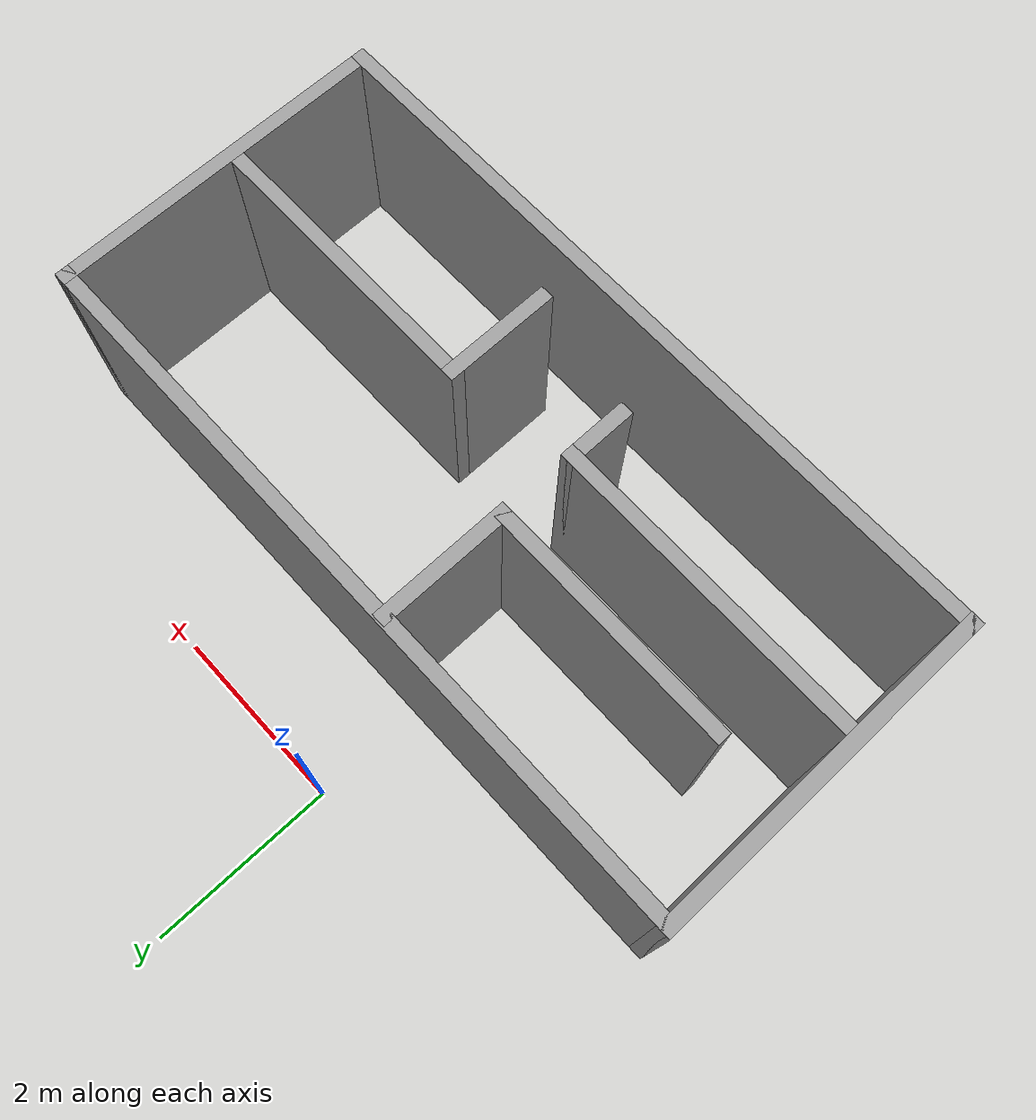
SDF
<?xml version='1.0'?>
<sdf version='1.7'>
  <model name='room'>
    <pose>0.805 -2.4725 0 0 -0 0</pose>
    <link name='Wall_0'>
      <collision name='Wall_0_Collision'>
        <geometry>
          <box>
            <size>8 0.15 2.5</size>
          </box>
        </geometry>
        <pose>0 0 1.25 0 -0 0</pose>
      </collision>
      <visual name='Wall_0_Visual'>
        <pose>0 0 1.25 0 -0 0</pose>
        <geometry>
          <box>
            <size>8 0.15 2.5</size>
          </box>
        </geometry>
        <material>
          <script>
            <uri>file://media/materials/scripts/gazebo.material</uri>
            <name>Gazebo/Grey</name>
          </script>
          <ambient>1 1 1 1</ambient>
        </material>
        <meta>
          <layer>0</layer>
        </meta>
      </visual>
      <pose>-0 1.2025 0 0 -0 0</pose>
    </link>
    <link name='Wall_1'>
      <collision name='Wall_1_Collision'>
        <geometry>
          <box>
            <size>3.75 0.15 2.5</size>
          </box>
        </geometry>
        <pose>0 0 1.25 0 -0 0</pose>
      </collision>
      <visual name='Wall_1_Visual'>
        <pose>0 0 1.25 0 -0 0</pose>
        <geometry>
          <box>
            <size>3.75 0.15 2.5</size>
          </box>
        </geometry>
        <material>
          <script>
            <uri>file://media/materials/scripts/gazebo.material</uri>
            <name>Gazebo/Grey</name>
          </script>
          <ambient>1 1 1 1</ambient>
        </material>
        <meta>
          <layer>0</layer>
        </meta>
      </visual>
      <pose>3.925 -0.5975 0 0 -0 -1.5708</pose>
    </link>
    <link name='Wall_11'>
      <collision name='Wall_11_Collision'>
        <geometry>
          <box>
            <size>3.25 0.15 2.5</size>
          </box>
        </geometry>
        <pose>0 0 1.25 0 -0 0</pose>
      </collision>
      <visual name='Wall_11_Visual'>
        <pose>0 0 1.25 0 -0 0</pose>
        <geometry>
          <box>
            <size>3.25 0.15 2.5</size>
          </box>
        </geometry>
        <material>
          <script>
            <uri>file://media/materials/scripts/gazebo.material</uri>
            <name>Gazebo/Grey</name>
          </script>
          <ambient>1 1 1 1</ambient>
        </material>
        <meta>
          <layer>0</layer>
        </meta>
      </visual>
      <pose>2.335 -0.7675 0 0 -0 3.14159</pose>
    </link>
    <link name='Wall_12'>
      <collision name='Wall_12_Collision'>
        <geometry>
          <box>
            <size>1.25 0.15 2.5</size>
          </box>
        </geometry>
        <pose>0 0 1.25 0 -0 0</pose>
      </collision>
      <visual name='Wall_12_Visual'>
        <pose>0 0 1.25 0 -0 0</pose>
        <geometry>
          <box>
            <size>1.25 0.15 2.5</size>
          </box>
        </geometry>
        <material>
          <script>
            <uri>file://media/materials/scripts/gazebo.material</uri>
            <name>Gazebo/Grey</name>
          </script>
          <ambient>1 1 1 1</ambient>
        </material>
        <meta>
          <layer>0</layer>
        </meta>
      </visual>
      <pose>0.785 -1.3175 0 0 -0 -1.5708</pose>
    </link>
    <link name='Wall_2'>
      <collision name='Wall_2_Collision'>
        <geometry>
          <box>
            <size>8 0.15 2.5</size>
          </box>
        </geometry>
        <pose>0 0 1.25 0 -0 0</pose>
      </collision>
      <visual name='Wall_2_Visual'>
        <pose>0 0 1.25 0 -0 0</pose>
        <geometry>
          <box>
            <size>8 0.15 2.5</size>
          </box>
        </geometry>
        <material>
          <script>
            <uri>file://media/materials/scripts/gazebo.material</uri>
            <name>Gazebo/Grey</name>
          </script>
          <ambient>1 1 1 1</ambient>
        </material>
        <meta>
          <layer>0</layer>
        </meta>
      </visual>
      <pose>-0 -2.3975 0 0 -0 3.14159</pose>
    </link>
    <link name='Wall_3'>
      <collision name='Wall_3_Collision'>
        <geometry>
          <box>
            <size>3.75 0.15 2.5</size>
          </box>
        </geometry>
        <pose>0 0 1.25 0 -0 0</pose>
      </collision>
      <visual name='Wall_3_Visual'>
        <pose>0 0 1.25 0 -0 0</pose>
        <geometry>
          <box>
            <size>3.75 0.15 2.5</size>
          </box>
        </geometry>
        <material>
          <script>
            <uri>file://media/materials/scripts/gazebo.material</uri>
            <name>Gazebo/Grey</name>
          </script>
          <ambient>1 1 1 1</ambient>
        </material>
        <meta>
          <layer>0</layer>
        </meta>
      </visual>
      <pose>-3.925 -0.5975 0 0 -0 1.5708</pose>
    </link>
    <link name='Wall_5'>
      <collision name='Wall_5_Collision'>
        <geometry>
          <box>
            <size>1.5 0.15 2.5</size>
          </box>
        </geometry>
        <pose>0 0 1.25 0 -0 0</pose>
      </collision>
      <visual name='Wall_5_Visual'>
        <pose>0 0 1.25 0 -0 0</pose>
        <geometry>
          <box>
            <size>1.5 0.15 2.5</size>
          </box>
        </geometry>
        <material>
          <script>
            <uri>file://media/materials/scripts/gazebo.material</uri>
            <name>Gazebo/Grey</name>
          </script>
          <ambient>1 1 1 1</ambient>
        </material>
        <meta>
          <layer>0</layer>
        </meta>
      </visual>
      <pose>-0.525 0.5075 0 0 -0 -1.5708</pose>
    </link>
    <link name='Wall_6'>
      <collision name='Wall_6_Collision'>
        <geometry>
          <box>
            <size>2.75 0.15 2.5</size>
          </box>
        </geometry>
        <pose>0 0 1.25 0 -0 0</pose>
      </collision>
      <visual name='Wall_6_Visual'>
        <pose>0 0 1.25 0 -0 0</pose>
        <geometry>
          <box>
            <size>2.75 0.15 2.5</size>
          </box>
        </geometry>
        <material>
          <script>
            <uri>file://media/materials/scripts/gazebo.material</uri>
            <name>Gazebo/Grey</name>
          </script>
          <ambient>1 1 1 1</ambient>
        </material>
        <meta>
          <layer>0</layer>
        </meta>
      </visual>
      <pose>-1.825 -0.1675 0 0 -0 3.14159</pose>
    </link>
    <link name='Wall_8'>
      <collision name='Wall_8_Collision'>
        <geometry>
          <box>
            <size>3.5 0.15 2.5</size>
          </box>
        </geometry>
        <pose>0 0 1.25 0 -0 0</pose>
      </collision>
      <visual name='Wall_8_Visual'>
        <pose>0 0 1.25 0 -0 0</pose>
        <geometry>
          <box>
            <size>3.5 0.15 2.5</size>
          </box>
        </geometry>
        <material>
          <script>
            <uri>file://media/materials/scripts/gazebo.material</uri>
            <name>Gazebo/Grey</name>
          </script>
          <ambient>1 1 1 1</ambient>
        </material>
        <meta>
          <layer>0</layer>
        </meta>
      </visual>
      <pose>-2.22 -0.9875 0 0 -0 0</pose>
    </link>
    <link name='Wall_9'>
      <collision name='Wall_9_Collision'>
        <geometry>
          <box>
            <size>0.75 0.15 2.5</size>
          </box>
        </geometry>
        <pose>0 0 1.25 0 -0 0</pose>
      </collision>
      <visual name='Wall_9_Visual'>
        <pose>0 0 1.25 0 -0 0</pose>
        <geometry>
          <box>
            <size>0.75 0.15 2.5</size>
          </box>
        </geometry>
        <material>
          <script>
            <uri>file://media/materials/scripts/gazebo.material</uri>
            <name>Gazebo/Grey</name>
          </script>
          <ambient>1 1 1 1</ambient>
        </material>
        <meta>
          <layer>0</layer>
        </meta>
      </visual>
      <pose>-0.545 -1.2875 0 0 -0 -1.5708</pose>
    </link>
    <static>1</static>
  </model>
</sdf>
